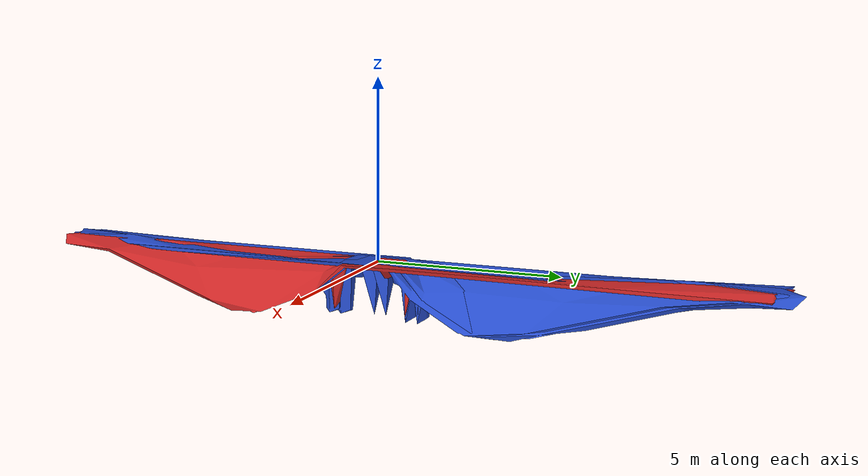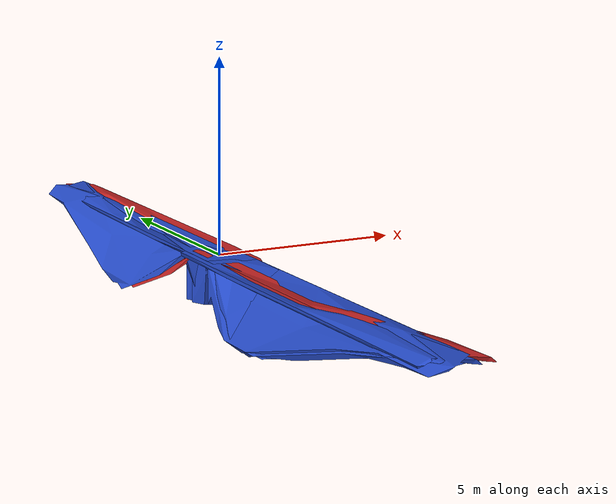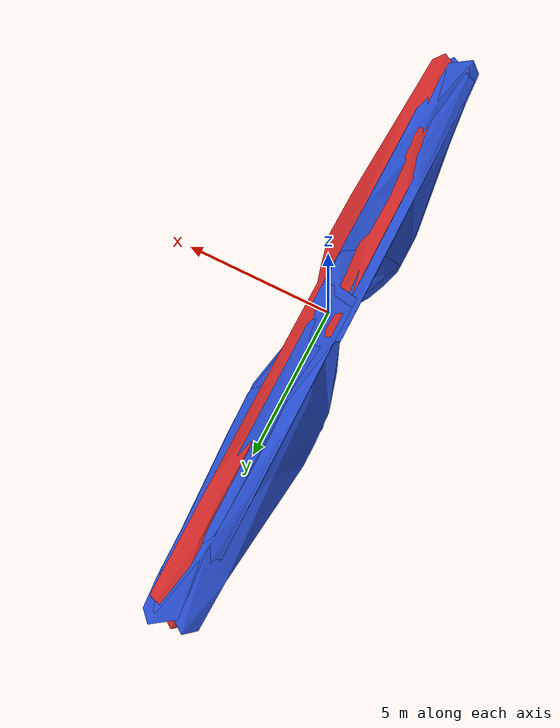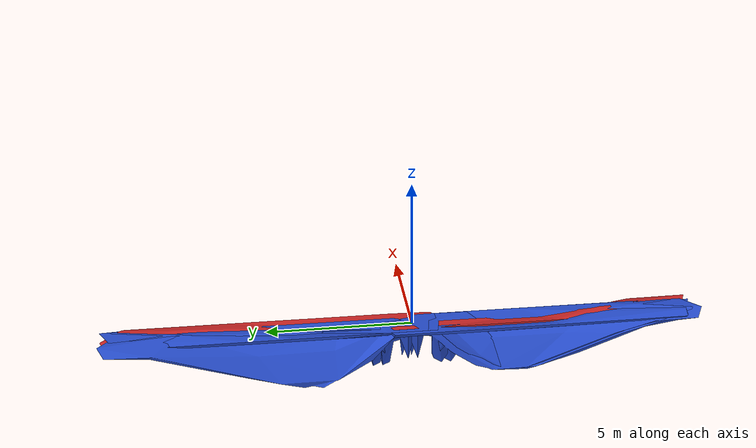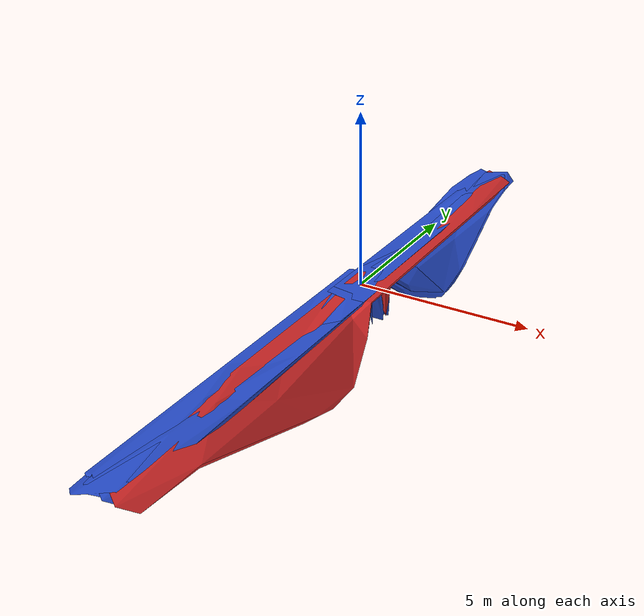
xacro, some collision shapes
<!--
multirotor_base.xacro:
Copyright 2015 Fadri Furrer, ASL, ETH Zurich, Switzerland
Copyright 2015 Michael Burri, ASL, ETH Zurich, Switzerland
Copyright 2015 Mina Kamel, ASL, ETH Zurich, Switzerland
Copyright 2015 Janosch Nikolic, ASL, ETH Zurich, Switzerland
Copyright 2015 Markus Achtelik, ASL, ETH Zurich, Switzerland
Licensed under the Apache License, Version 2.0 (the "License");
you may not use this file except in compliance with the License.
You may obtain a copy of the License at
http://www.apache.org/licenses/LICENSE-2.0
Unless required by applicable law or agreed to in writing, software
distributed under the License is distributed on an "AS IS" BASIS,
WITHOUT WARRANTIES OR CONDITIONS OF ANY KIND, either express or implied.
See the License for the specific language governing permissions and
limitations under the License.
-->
<?xml version="1.0"?>

<robot name="hummingbird" xmlns:xacro="http://ros.org/wiki/xacro">
  <!-- Properties (Taken from Novel Dynamic Inversion Architecture Design
for Quadrocopter Control by Jian Wang et al.) -->
  <xacro:property name="namespace" value="hummingbird" />
  <xacro:property name="rotor_velocity_slowdown_sim" value="10" />
  <xacro:property name="mesh_file" value="hummingbird.dae" />
  <xacro:property name="mass" value="0.68" /> <!-- [kg] -->
  <xacro:property name="body_width" value="0.1" />
  <xacro:property name="body_height" value="0.12" />
  <xacro:property name="mass_rotor" value="0.009" /> <!-- [kg] -->
  <xacro:property name="arm_length" value="0.17" />
  <xacro:property name="rotor_offset_top" value="0.01" />
  <xacro:property name="radius_rotor" value="0.1" />
  <xacro:property name="motor_constant" value="5.7e-08" /> <!-- [kg·m/s^2] -->
  <xacro:property name="moment_constant" value="0.016" />
  <xacro:property name="time_constant_up" value="0.0125" />
  <xacro:property name="time_constant_down" value="0.025" />
  <xacro:property name="max_rot_velocity" value="838" /> <!-- [rad/s] -->
  <xacro:property name="rotor_drag_coefficient" value="8.06428e-05" />
  <xacro:property name="rolling_moment_coefficient" value="0.000001" />

  <!-- Property Blocks -->
  <xacro:property name="body_inertia">
    <inertia ixx="0.007" ixy="0.0" ixz="0.0" iyy="0.007" iyz="0.0" izz="0.012" /> <!-- [kg·m^2] [kg·m^2] [kg·m^2] [kg·m^2] [kg·m^2] [kg·m^2] -->
  </xacro:property>

  <!-- inertia of a single rotor, assuming it is a cuboid. Height=3mm, width=15mm -->
  <xacro:property name="rotor_inertia">
    <inertia
    ixx="${1/12 * mass_rotor * (0.015 * 0.015 + 0.003 * 0.003) * rotor_velocity_slowdown_sim}"
    iyy="${1/12 * mass_rotor * (4 * radius_rotor * radius_rotor + 0.003 * 0.003) * rotor_velocity_slowdown_sim}"
    izz="${1/12 * mass_rotor * (4 * radius_rotor * radius_rotor + 0.015 * 0.015) * rotor_velocity_slowdown_sim}"
    ixy="0.0" ixz="0.0"  iyz="0.0" /> <!-- [kg·m^2] [kg·m^2] [kg·m^2] [kg·m^2] [kg·m^2] [kg·m^2] -->
  </xacro:property>

  <!-- Included URDF Files -->
  <xacro:include filename="$(find mav_description)/urdf/multirotor_base.xacro" />

  <!-- Instantiate multirotor_base_macro once -->
  <xacro:multirotor_base_macro
    robot_namespace="${namespace}"
    mass="${mass}"
    body_width="${body_width}"
    body_height="${body_height}"
    mesh_file="${mesh_file}">
    <xacro:insert_block name="body_inertia" />
  </xacro:multirotor_base_macro>

  <!-- Instantiate rotors -->
  <xacro:vertical_rotor
    robot_namespace="${namespace}"
    suffix="front"
    direction="cw"
    motor_constant="${motor_constant}"
    moment_constant="${moment_constant}"
    parent="base_link"
    mass_rotor="${mass_rotor}"
    radius_rotor="${radius_rotor}"
    time_constant_up="${time_constant_up}"
    time_constant_down="${time_constant_down}"
    max_rot_velocity="${max_rot_velocity}"
    motor_number="0"
    rotor_drag_coefficient="${rotor_drag_coefficient}"
    rolling_moment_coefficient="${rolling_moment_coefficient}"
    color="Red">
    <origin xyz="${arm_length} 0 ${rotor_offset_top}" rpy="0 0 0" />
    <xacro:insert_block name="rotor_inertia" />
  </xacro:vertical_rotor>

  <xacro:vertical_rotor
    robot_namespace="${namespace}"
    suffix="left"
    direction="ccw"
    motor_constant="${motor_constant}"
    moment_constant="${moment_constant}"
    parent="base_link"
    mass_rotor="${mass_rotor}"
    radius_rotor="${radius_rotor}"
    time_constant_up="${time_constant_up}"
    time_constant_down="${time_constant_down}"
    max_rot_velocity="${max_rot_velocity}"
    motor_number="1"
    rotor_drag_coefficient="${rotor_drag_coefficient}"
    rolling_moment_coefficient="${rolling_moment_coefficient}"
    color="Blue">
    <origin xyz="0 ${arm_length} ${rotor_offset_top}" rpy="0 0 0" />
    <xacro:insert_block name="rotor_inertia" />
  </xacro:vertical_rotor>

  <xacro:vertical_rotor
    robot_namespace="${namespace}"
    suffix="back"
    direction="cw"
    motor_constant="${motor_constant}"
    moment_constant="${moment_constant}"
    parent="base_link"
    mass_rotor="${mass_rotor}"
    radius_rotor="${radius_rotor}"
    time_constant_up="${time_constant_up}"
    time_constant_down="${time_constant_down}"
    max_rot_velocity="${max_rot_velocity}"
    motor_number="2"
    rotor_drag_coefficient="${rotor_drag_coefficient}"
    rolling_moment_coefficient="${rolling_moment_coefficient}"
    color="Blue">
    <origin xyz="-${arm_length} 0 ${rotor_offset_top}" rpy="0 0 0" />
    <xacro:insert_block name="rotor_inertia" />
  </xacro:vertical_rotor>

  <xacro:vertical_rotor
    robot_namespace="${namespace}"
    suffix="right"
    direction="ccw"
    motor_constant="${motor_constant}"
    moment_constant="${moment_constant}"
    parent="base_link"
    mass_rotor="${mass_rotor}"
    radius_rotor="${radius_rotor}"
    time_constant_up="${time_constant_up}"
    time_constant_down="${time_constant_down}"
    max_rot_velocity="${max_rot_velocity}"
    motor_number="3"
    rotor_drag_coefficient="${rotor_drag_coefficient}"
    rolling_moment_coefficient="${rolling_moment_coefficient}"
    color="Blue">
    <origin xyz="0 -${arm_length} ${rotor_offset_top}" rpy="0 0 0" />
    <xacro:insert_block name="rotor_inertia" />
  </xacro:vertical_rotor>

</robot>

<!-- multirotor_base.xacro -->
<robot xmlns:xacro="http://ros.org/wiki/xacro">
  <!-- Main multirotor link -->
  <xacro:macro name="multirotor_base_macro"
    params="robot_namespace mass body_width body_height mesh_file *inertia">
    <link name="base_link"></link>

    <joint name="base_joint" type="fixed">
      <origin xyz="0 0 0" rpy="0 0 0" />
      <parent link="base_link" />
      <child link="base_link_inertia" />
    </joint>

    <link name="base_link_inertia">
      <inertial>
        <mass value="${mass}" />  <!-- [kg] -->
        <origin xyz="0 0 0" />
        <xacro:insert_block name="inertia" />
      </inertial>

      <visual>
        <origin xyz="0 0 0" rpy="0 0 0" />
        <geometry>
          <mesh filename="package://mav_description/meshes/${mesh_file}"
            scale="1 1 1" />

        </geometry>
      </visual>

      <collision>
        <origin xyz="0 0 0" rpy="0 0 0" />
        <geometry>
          <box size="${body_width} ${body_width} ${body_height}" />
        </geometry>
      </collision>
    </link>

    <!-- attach multirotor_base_plugin to the base_link -->
    <gazebo>
      <plugin filename="libmav_gazebo_multirotor_base_plugin.so" name="rosbag">
        <robotNamespace>${robot_namespace}</robotNamespace>
        <linkName>base_link</linkName>
        <rotorVelocitySlowdownSim>${rotor_velocity_slowdown_sim}</rotorVelocitySlowdownSim>
      </plugin>
    </gazebo>
  </xacro:macro>

  <!-- camera -->
  <xacro:macro name="camera_macro" params="robot_namespace">
    <!-- joint -->
    <joint name="camera_joint" type="fixed">
      <axis xyz="0 1 0" />
      <origin xyz="0 0 0.2" rpy="0 0 0" />
      <parent link="base_link" />
      <child link="camera_link" />
    </joint>

    <!-- link -->
    <link name="camera_link">
      <collision>
        <origin xyz="0 0 0" rpy="0 0 0" />
        <geometry>
          <box size="0.1 0.1 0.1" />
        </geometry>
      </collision>

      <visual>
        <origin xyz="0 0 0" rpy="0 0 0" />
        <geometry>
          <box size="0.1 0.1 0.1" />
        </geometry>
        <material name="red" />
      </visual>

      <inertial>
        <mass value="1e-5" />
        <origin xyz="0 0 0" rpy="0 0 0" />
        <inertia ixx="1e-6" ixy="0" ixz="0" iyy="1e-6" iyz="0" izz="1e-6" />
      </inertial>
    </link>
    <gazebo reference="camera_link">
      <sensor type="camera" name="camera1">
        <update_rate>30.0</update_rate>
        <camera name="head">
          <horizontal_fov>2</horizontal_fov>
          <image>
            <width>800</width>
            <height>600</height>
            <format>R8G8B8</format>
          </image>
          <clip>
            <near>0.02</near>
            <far>300</far>
          </clip>
          <noise>
            <type>gaussian</type>
            <mean>0.0</mean>
            <stddev>0.007</stddev>
          </noise>
        </camera>
        <plugin name="camera_controller" filename="libgazebo_ros_camera.so">
          <alwaysOn>true</alwaysOn>
          <updateRate>0.0</updateRate>
          <cameraName>${robot_namespace}/camera1</cameraName>
          <imageTopicName>image_raw</imageTopicName>
          <cameraInfoTopicName>camera_info</cameraInfoTopicName>
          <frameName>camera_link</frameName>
          <hackBaseline>0.07</hackBaseline>
          <distortionK1>0.0</distortionK1>
          <distortionK2>0.0</distortionK2>
          <distortionK3>0.0</distortionK3>
          <distortionT1>0.0</distortionT1>
          <distortionT2>0.0</distortionT2>
        </plugin>
      </sensor>
    </gazebo>
  </xacro:macro>

  <!-- Rotor joint and link -->
  <xacro:macro name="vertical_rotor"
    params="robot_namespace suffix direction motor_constant moment_constant parent mass_rotor radius_rotor time_constant_up time_constant_down max_rot_velocity motor_number rotor_drag_coefficient rolling_moment_coefficient color *origin *inertia">
    <joint name="rotor_${motor_number}_joint" type="continuous">
      <xacro:insert_block name="origin" />
      <axis xyz="0 0 1" />
      <!-- TODO(ff): not currently set because it's not yet supported -->
      <parent link="${parent}" />
      <child link="rotor_${motor_number}" />

    </joint>
    <!-- TODO(ff): not currently set because it's not yet supported -->
    <link name="rotor_${motor_number}">
      <inertial>
        <mass value="${mass_rotor}" /> <!-- [kg] -->
        <xacro:insert_block name="inertia" />
      </inertial>
      <visual>
        <geometry>

          <mesh filename="package://mav_description/meshes/propeller_${direction}.dae"
            scale="${radius_rotor} ${radius_rotor} ${radius_rotor}" /> <!-- The propeller meshes have a radius of 1m -->
        </geometry>
      </visual>
      <collision>
        <geometry>
          <cylinder length="0.005" radius="${radius_rotor}" />
        </geometry>
      </collision>
    </link>
    <gazebo>
      <plugin name="${suffix}_motor_model" filename="libmav_gazebo_motor_model.so">
        <jointName>rotor_${motor_number}_joint</jointName>
        <linkName>rotor_${motor_number}</linkName>
        <turningDirection>${direction}</turningDirection>
        <timeConstantUp>${time_constant_up}</timeConstantUp>
        <timeConstantDown>${time_constant_down}</timeConstantDown>
        <maxRotVelocity>${max_rot_velocity}</maxRotVelocity>
        <motorConstant>${motor_constant}</motorConstant>
        <momentConstant>${moment_constant}</momentConstant>
        <commandSubTopic>${robot_namespace}/motor_velocity_reference</commandSubTopic>
        <motorNumber>${motor_number}</motorNumber>
        <rotorDragCoefficient>${rotor_drag_coefficient}</rotorDragCoefficient>
        <rollingMomentCoefficient>${rolling_moment_coefficient}</rollingMomentCoefficient>
        <motorVelocityPubTopic>${robot_namespace}/motor_vel/${motor_number}</motorVelocityPubTopic>
        <rotorVelocitySlowdownSim>${rotor_velocity_slowdown_sim}</rotorVelocitySlowdownSim>
      </plugin>
    </gazebo>
    <gazebo reference="rotor_${motor_number}">
      <material>Gazebo/${color}</material>
    </gazebo>
  </xacro:macro>
</robot>
